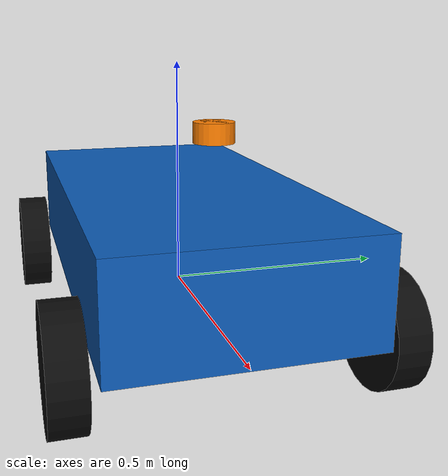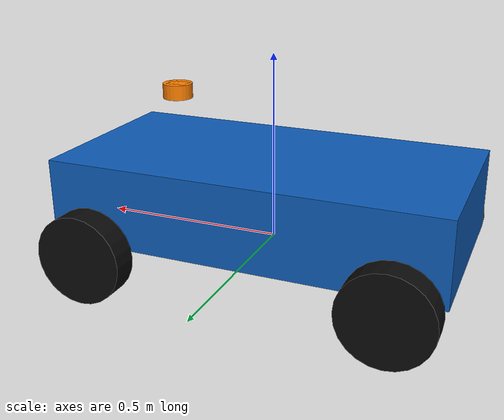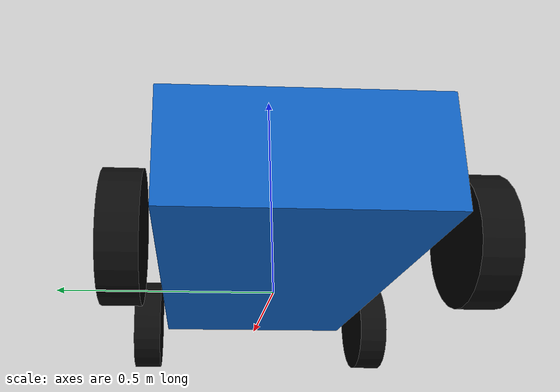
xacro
<?xml version="1.0"?>
<robot xmlns:xacro="http://www.ros.org/wiki/xacro" name="course_ackermann">
  <!-- Dimensions from course-kit v1-w08 models/course_ackermann/model.sdf.
       SI units; x forward, y left, z up. Joint origins are parent-relative. -->
  <xacro:arg name="wheel_base" default="0.8"/>
  <xacro:arg name="track" default="0.62"/>
  <xacro:arg name="wheel_radius" default="0.12"/>
  <xacro:property name="wheel_base" value="$(arg wheel_base)"/>
  <xacro:property name="track" value="$(arg track)"/>
  <xacro:property name="wheel_radius" value="$(arg wheel_radius)"/>

  <material name="body_blue"><color rgba="0.05 0.36 0.72 1"/></material>
  <material name="wheel_black"><color rgba="0.04 0.04 0.04 1"/></material>
  <material name="sensor_orange"><color rgba="1 0.5 0 1"/></material>

  <link name="base_link">
    <inertial>
      <mass value="12"/>
      <inertia ixx="0.55" ixy="0" ixz="0" iyy="1.10" iyz="0" izz="1.40"/>
    </inertial>
    <visual>
      <origin xyz="0 0 0.12"/>
      <geometry><box size="1.05 0.52 0.22"/></geometry>
      <material name="body_blue"/>
    </visual>
    <collision>
      <origin xyz="0 0 0.12"/>
      <geometry><box size="1.05 0.52 0.22"/></geometry>
    </collision>
  </link>

  <link name="front_left_knuckle">
    <inertial>
      <mass value="0.2"/>
      <inertia ixx="0.001" ixy="0" ixz="0" iyy="0.001" iyz="0" izz="0.001"/>
    </inertial>
  </link>
  <joint name="front_left_steering_joint" type="revolute">
    <parent link="base_link"/><child link="front_left_knuckle"/>
    <origin xyz="${wheel_base / 2} ${track / 2} 0"/>
    <axis xyz="0 0 1"/>
    <limit lower="-0.55" upper="0.55" effort="25" velocity="1"/>
  </joint>
  <link name="front_right_knuckle">
    <inertial>
      <mass value="0.2"/>
      <inertia ixx="0.001" ixy="0" ixz="0" iyy="0.001" iyz="0" izz="0.001"/>
    </inertial>
  </link>
  <joint name="front_right_steering_joint" type="revolute">
    <parent link="base_link"/><child link="front_right_knuckle"/>
    <origin xyz="${wheel_base / 2} ${-track / 2} 0"/>
    <axis xyz="0 0 1"/>
    <limit lower="-0.55" upper="0.55" effort="25" velocity="1"/>
  </joint>

  <!-- Rotate cylinder geometry, not the link frame: wheel axes remain +Y. -->
  <link name="front_left_wheel">
    <inertial>
      <mass value="0.8"/>
      <inertia ixx="0.006" ixy="0" ixz="0" iyy="0.003" iyz="0" izz="0.006"/>
    </inertial>
    <visual>
      <origin rpy="${pi / 2} 0 0"/>
      <geometry><cylinder radius="${wheel_radius}" length="0.07"/></geometry>
      <material name="wheel_black"/>
    </visual>
    <collision>
      <origin rpy="${pi / 2} 0 0"/>
      <geometry><cylinder radius="${wheel_radius}" length="0.07"/></geometry>
    </collision>
  </link>
  <joint name="front_left_wheel_joint" type="continuous">
    <parent link="front_left_knuckle"/><child link="front_left_wheel"/>
    <axis xyz="0 1 0"/>
  </joint>
  <link name="front_right_wheel">
    <inertial>
      <mass value="0.8"/>
      <inertia ixx="0.006" ixy="0" ixz="0" iyy="0.003" iyz="0" izz="0.006"/>
    </inertial>
    <visual>
      <origin rpy="${pi / 2} 0 0"/>
      <geometry><cylinder radius="${wheel_radius}" length="0.07"/></geometry>
      <material name="wheel_black"/>
    </visual>
    <collision>
      <origin rpy="${pi / 2} 0 0"/>
      <geometry><cylinder radius="${wheel_radius}" length="0.07"/></geometry>
    </collision>
  </link>
  <joint name="front_right_wheel_joint" type="continuous">
    <parent link="front_right_knuckle"/><child link="front_right_wheel"/>
    <axis xyz="0 1 0"/>
  </joint>
  <link name="rear_left_wheel">
    <inertial>
      <mass value="0.8"/>
      <inertia ixx="0.006" ixy="0" ixz="0" iyy="0.003" iyz="0" izz="0.006"/>
    </inertial>
    <visual>
      <origin rpy="${pi / 2} 0 0"/>
      <geometry><cylinder radius="${wheel_radius}" length="0.07"/></geometry>
      <material name="wheel_black"/>
    </visual>
    <collision>
      <origin rpy="${pi / 2} 0 0"/>
      <geometry><cylinder radius="${wheel_radius}" length="0.07"/></geometry>
    </collision>
  </link>
  <joint name="rear_left_wheel_joint" type="continuous">
    <parent link="base_link"/><child link="rear_left_wheel"/>
    <origin xyz="${-wheel_base / 2} ${track / 2} 0"/>
    <axis xyz="0 1 0"/>
  </joint>
  <link name="rear_right_wheel">
    <inertial>
      <mass value="0.8"/>
      <inertia ixx="0.006" ixy="0" ixz="0" iyy="0.003" iyz="0" izz="0.006"/>
    </inertial>
    <visual>
      <origin rpy="${pi / 2} 0 0"/>
      <geometry><cylinder radius="${wheel_radius}" length="0.07"/></geometry>
      <material name="wheel_black"/>
    </visual>
    <collision>
      <origin rpy="${pi / 2} 0 0"/>
      <geometry><cylinder radius="${wheel_radius}" length="0.07"/></geometry>
    </collision>
  </link>
  <joint name="rear_right_wheel_joint" type="continuous">
    <parent link="base_link"/><child link="rear_right_wheel"/>
    <origin xyz="${-wheel_base / 2} ${-track / 2} 0"/>
    <axis xyz="0 1 0"/>
  </joint>

  <!-- The SDF specifies sensor frames but no visible sensor housings.
       Small boxes below visualize these frames; they are not Gazebo sensors. -->
  <link name="camera_link">
    <inertial>
      <mass value="0.033333333333"/>
      <inertia ixx="0.000333333333" ixy="0" ixz="0" iyy="0.000333333333" iyz="0" izz="0.000333333333"/>
    </inertial>
    <visual><geometry><box size="0.06 0.04 0.04"/></geometry><material name="sensor_orange"/></visual>
    <collision><geometry><box size="0.06 0.04 0.04"/></geometry></collision>
  </link>
  <joint name="camera_joint" type="fixed">
    <parent link="base_link"/><child link="camera_link"/>
    <origin xyz="0.28 0 0.38"/>
  </joint>
  <link name="lidar_link">
    <inertial>
      <mass value="0.033333333333"/>
      <inertia ixx="0.000333333333" ixy="0" ixz="0" iyy="0.000333333333" iyz="0" izz="0.000333333333"/>
    </inertial>
    <visual><geometry><cylinder radius="0.04" length="0.04"/></geometry><material name="sensor_orange"/></visual>
    <collision><geometry><cylinder radius="0.04" length="0.04"/></geometry></collision>
  </link>
  <joint name="lidar_joint" type="fixed">
    <parent link="base_link"/><child link="lidar_link"/>
    <origin xyz="0.28 0 0.38"/>
  </joint>
  <link name="imu_link">
    <inertial>
      <mass value="0.033333333334"/>
      <inertia ixx="0.000333333334" ixy="0" ixz="0" iyy="0.000333333334" iyz="0" izz="0.000333333334"/>
    </inertial>
    <visual><geometry><box size="0.025 0.025 0.015"/></geometry><material name="sensor_orange"/></visual>
    <collision><geometry><box size="0.025 0.025 0.015"/></geometry></collision>
  </link>
  <joint name="imu_joint" type="fixed">
    <parent link="base_link"/><child link="imu_link"/>
    <origin xyz="0.28 0 0.38"/>
  </joint>
</robot>
